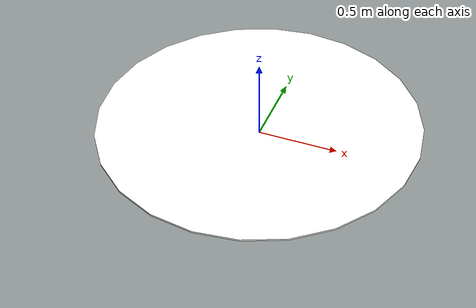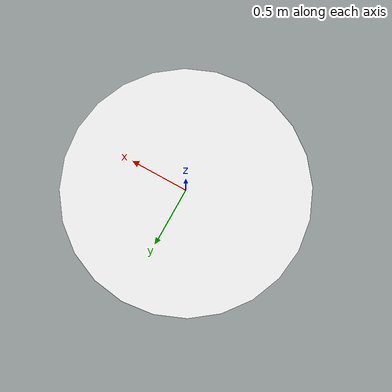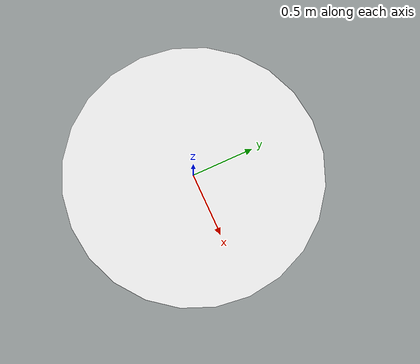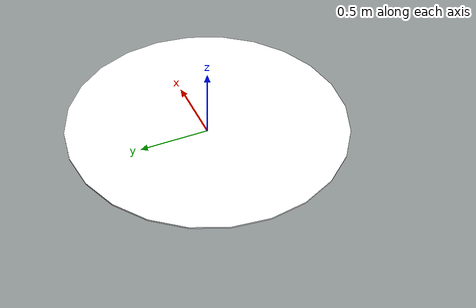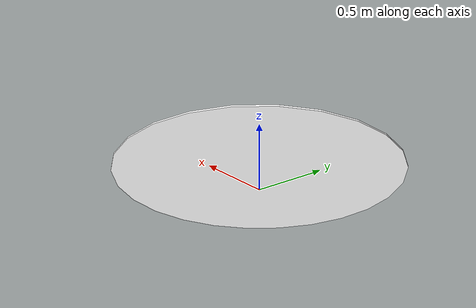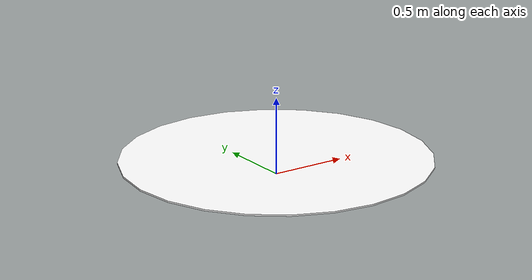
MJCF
<mujoco model="Skydio X2">

  <asset>
    <texture name="donut_tex" type="2d" file="donut_with_markers.png"/>
    <material name="donut_material" texture="donut_tex" texrepeat="1 1" texuniform="true"/>
  </asset>

  <worldbody>
    <body name="platform_body" pos="0 0 0.1">
      <joint name="platform_joint_x" type="slide" axis="1 0 0" damping="5"/>
      <joint name="platform_joint_y" type="slide" axis="0 1 0" damping="5"/>
      <geom name="donut_platform" type="cylinder" size="1.0 0.005" material="donut_material" rgba="1 1 1 1"
        condim="4" friction="1.5 1.5 0.001" solref="0.001 0.2" solimp="0.6 0.95 0.001"/>
    </body>
  </worldbody>

</mujoco>
